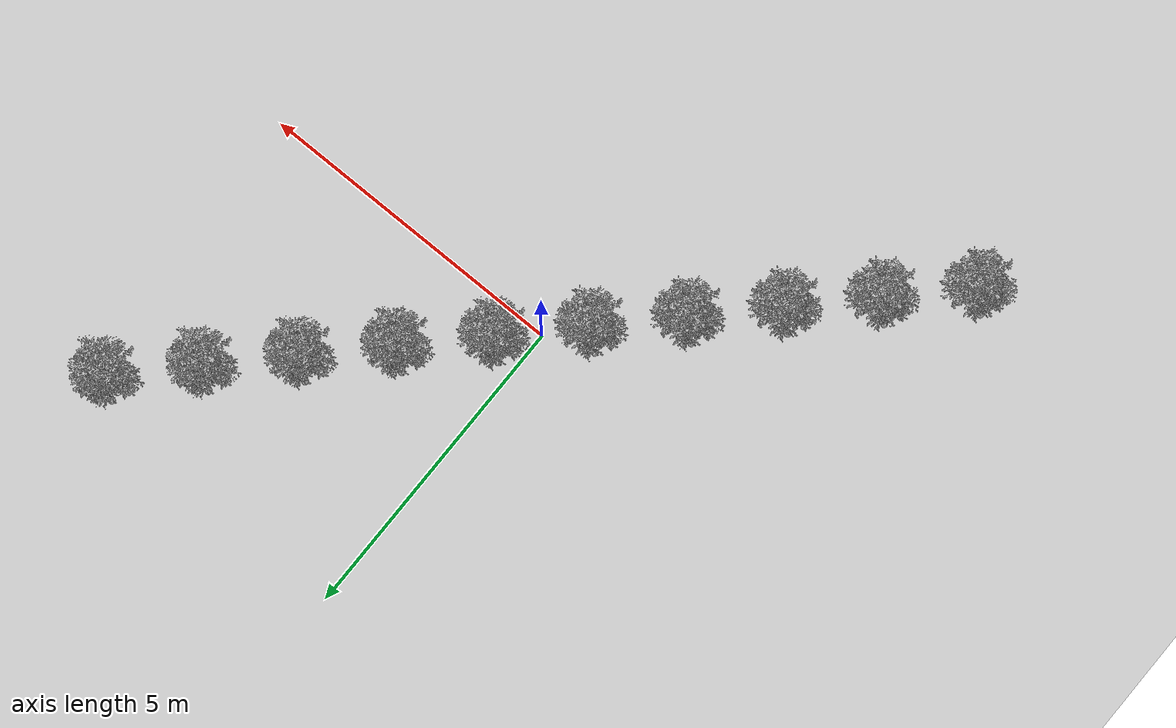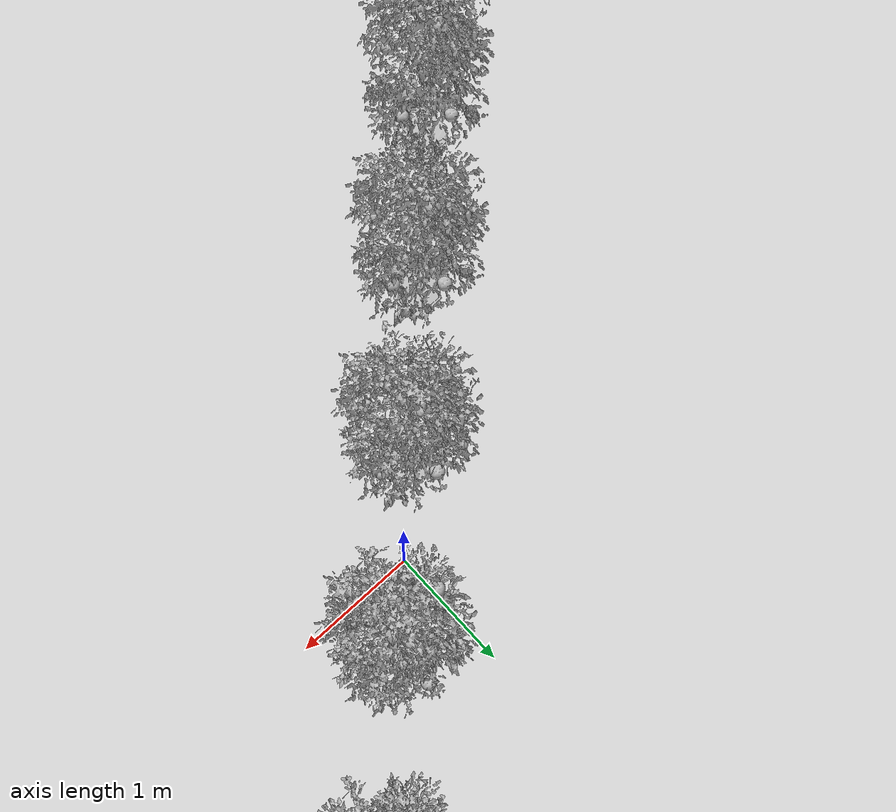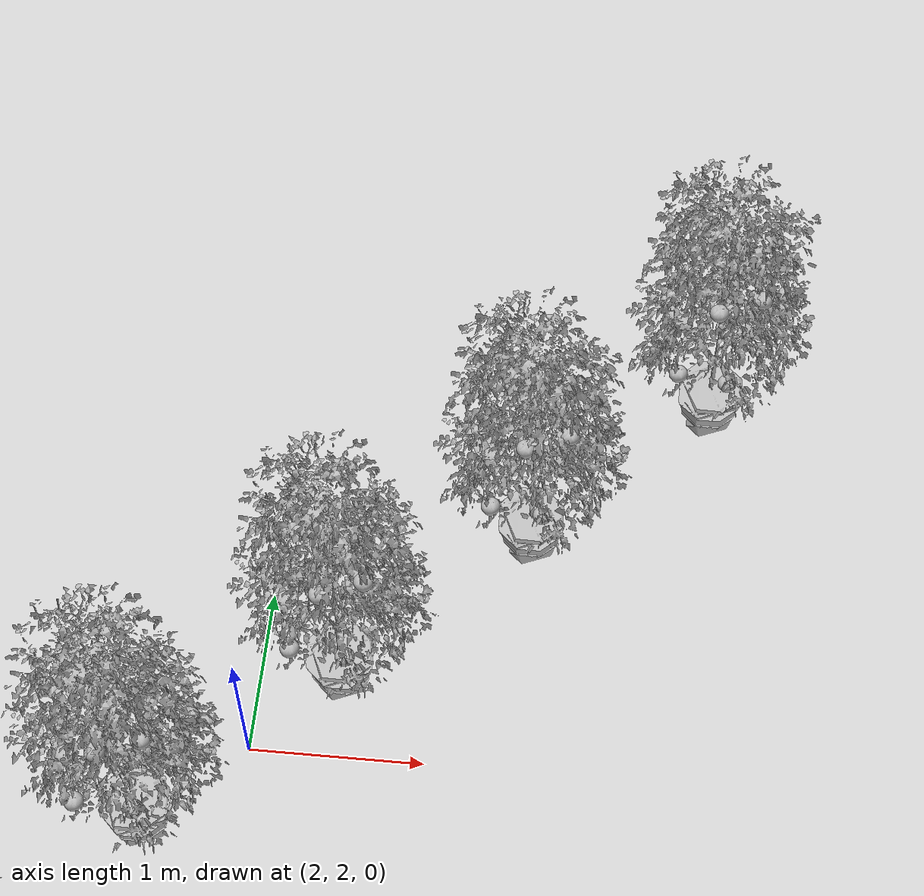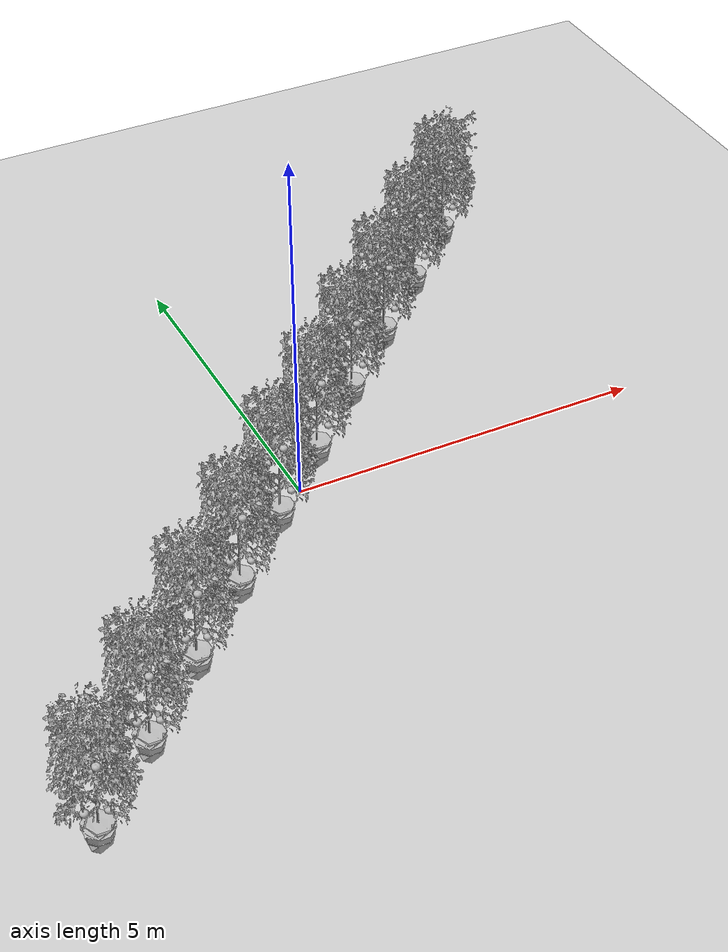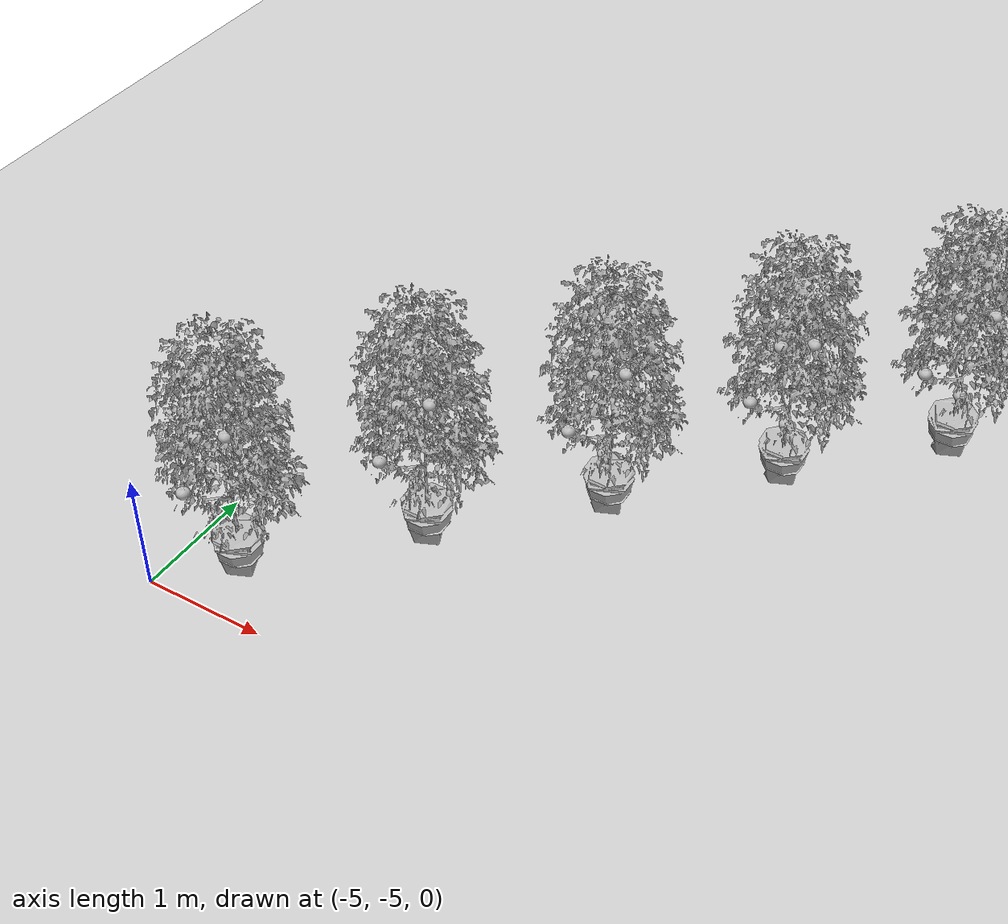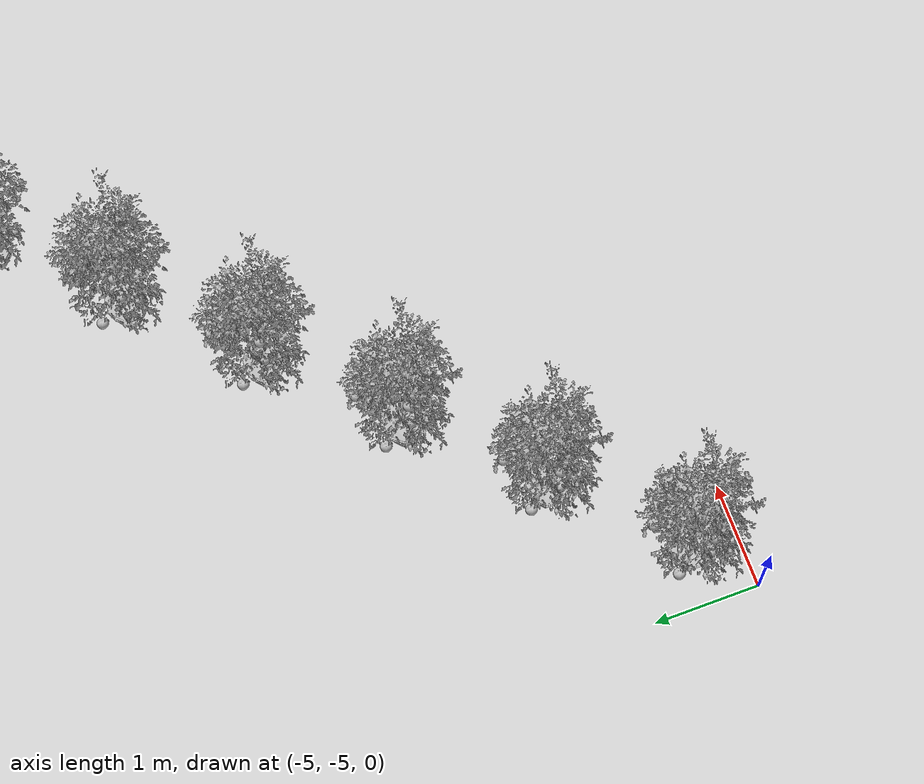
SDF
<sdf version="1.6">
 <world name="default">
  <physics type="ode">
   <max_step_size>0.004</max_step_size>
   <real_time_factor>1</real_time_factor>
   <real_time_update_rate>250</real_time_update_rate>
   <ode><solver><iters>50</iters><island_threads>4</island_threads></solver></ode>
  </physics>
  <scene><shadows>false</shadows><grid>false</grid><sky><clouds><speed>4</speed></clouds></sky></scene>
  <include><uri>model://sun</uri></include>
  <include><uri>model://ground_plane</uri></include>
  <include><uri>model://plant_4</uri><name>plant_1</name><pose>-0.5 -0.5 0 0 0 0</pose></include>
  <include><uri>model://plant_4</uri><name>plant_2</name><pose>-1.5 -1.5 0 0 0 0</pose></include>
  <include><uri>model://plant_4</uri><name>plant_3</name><pose>0.5 0.5 0 0 0 0</pose></include>
  <include><uri>model://plant_4</uri><name>plant_4</name><pose>1.5 1.5 0 0 0 0</pose></include>
  <include><uri>model://plant_4</uri><name>plant_5</name><pose>2.5 2.5 0 0 0 0</pose></include>
  <include><uri>model://plant_4</uri><name>plant_6</name><pose>-2.5 -2.5 0 0 0 0</pose></include>
  <include><uri>model://plant_4</uri><name>plant_7</name><pose>-3.5 -3.5 0 0 0 0</pose></include>
  <include><uri>model://plant_4</uri><name>plant_8</name><pose>3.5 3.5 0 0 0 0</pose></include>
  <include><uri>model://plant_4</uri><name>plant_9</name><pose>-4.5 -4.5 0 0 0 0</pose></include>
  <include><uri>model://plant_4</uri><name>plant_10</name><pose>4.5 4.5 0 0 0 0</pose></include>
 </world>
</sdf>

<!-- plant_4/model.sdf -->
<sdf version="1.6">
    <model name="plant_4">
    	<static>false</static>
       <link name="plant_link">
        <pose>0 0 0 0 0 0</pose>
        <inertial>
          <mass>30</mass>
        </inertial>
         <visual name="visual">
          <pose>0 0 0 0 0 -0.277507351</pose>
          <geometry>
            <mesh><uri>model://plant/meshes/plant.obj</uri></mesh>
          </geometry>
        </visual>
        <collision name="collision">
          <pose>0 0 0.125 0 0 0</pose>
          <geometry>
            <box><size>0.3 0.3 0.25</size></box>
          </geometry>
        </collision>
      </link>

      <link name="t_link_0">
        <pose>-0.297 0.244 0.669 0 0 0</pose>
        <inertial>
          <mass>0.1</mass>
        </inertial>
        <collision name="collision">
          <geometry>
            <sphere><radius>0.05</radius></sphere>
          </geometry>
        </collision>
        <visual name="visual">
          <geometry>
            <mesh><uri>model://tomato/meshes/tomato.obj</uri></mesh>
          </geometry>
        </visual>
      </link>
      <joint name="t_joint_0" type="fixed">
        <parent>plant_link</parent>
        <child>t_link_0</child>
        <axis>
          <xyz>0 0 1</xyz>
          <use_parent_model_frame>true</use_parent_model_frame>
        </axis>
        <sensor name="force_torque" type="force_torque">
          <always_on>true</always_on>
          <update_rate>250</update_rate>
          <plugin name="breakable_0" filename="libBreakableJointPlugin.so">
            <breaking_force_N>10</breaking_force_N>
          </plugin>
        </sensor>
      </joint>

      <link name="t_link_1">
        <pose>0.073 0.375 1.175 0 0 0</pose>
        <inertial>
          <mass>0.1</mass>
        </inertial>
        <collision name="collision">
          <geometry>
            <sphere><radius>0.05</radius></sphere>
          </geometry>
        </collision>
        <visual name="visual">
          <geometry>
            <mesh><uri>model://tomato/meshes/tomato.obj</uri></mesh>
          </geometry>
        </visual>
      </link>
      <joint name="t_joint_1" type="fixed">
        <parent>plant_link</parent>
        <child>t_link_1</child>
        <axis>
          <xyz>0 0 1</xyz>
          <use_parent_model_frame>true</use_parent_model_frame>
        </axis>
        <sensor name="force_torque" type="force_torque">
          <always_on>true</always_on>
          <update_rate>250</update_rate>
          <plugin name="breakable_1" filename="libBreakableJointPlugin.so">
            <breaking_force_N>10</breaking_force_N>
          </plugin>
        </sensor>
      </joint>

      <link name="t_link_2">
        <pose>0.196 -0.202 1.528 0 0 0</pose>
        <inertial>
          <mass>0.1</mass>
        </inertial>
        <collision name="collision">
          <geometry>
            <sphere><radius>0.05</radius></sphere>
          </geometry>
        </collision>
        <visual name="visual">
          <geometry>
            <mesh><uri>model://tomato/meshes/tomato.obj</uri></mesh>
          </geometry>
        </visual>
      </link>
      <joint name="t_joint_2" type="fixed">
        <parent>plant_link</parent>
        <child>t_link_2</child>
        <axis>
          <xyz>0 0 1</xyz>
          <use_parent_model_frame>true</use_parent_model_frame>
        </axis>
        <sensor name="force_torque" type="force_torque">
          <always_on>true</always_on>
          <update_rate>250</update_rate>
          <plugin name="breakable_2" filename="libBreakableJointPlugin.so">
            <breaking_force_N>10</breaking_force_N>
          </plugin>
        </sensor>
      </joint>

      <link name="t_link_3">
        <pose>0.054 -0.237 0.732 0 0 0</pose>
        <inertial>
          <mass>0.1</mass>
        </inertial>
        <collision name="collision">
          <geometry>
            <sphere><radius>0.05</radius></sphere>
          </geometry>
        </collision>
        <visual name="visual">
          <geometry>
            <mesh><uri>model://tomato/meshes/tomato.obj</uri></mesh>
          </geometry>
        </visual>
      </link>
      <joint name="t_joint_3" type="fixed">
        <parent>plant_link</parent>
        <child>t_link_3</child>
        <axis>
          <xyz>0 0 1</xyz>
          <use_parent_model_frame>true</use_parent_model_frame>
        </axis>
        <sensor name="force_torque" type="force_torque">
          <always_on>true</always_on>
          <update_rate>250</update_rate>
          <plugin name="breakable_3" filename="libBreakableJointPlugin.so">
            <breaking_force_N>10</breaking_force_N>
          </plugin>
        </sensor>
      </joint>

      <link name="t_link_4">
        <pose>-0.236 -0.275 0.851 0 0 0</pose>
        <inertial>
          <mass>0.1</mass>
        </inertial>
        <collision name="collision">
          <geometry>
            <sphere><radius>0.05</radius></sphere>
          </geometry>
        </collision>
        <visual name="visual">
          <geometry>
            <mesh><uri>model://tomato/meshes/tomato.obj</uri></mesh>
          </geometry>
        </visual>
      </link>
      <joint name="t_joint_4" type="fixed">
        <parent>plant_link</parent>
        <child>t_link_4</child>
        <axis>
          <xyz>0 0 1</xyz>
          <use_parent_model_frame>true</use_parent_model_frame>
        </axis>
        <sensor name="force_torque" type="force_torque">
          <always_on>true</always_on>
          <update_rate>250</update_rate>
          <plugin name="breakable_4" filename="libBreakableJointPlugin.so">
            <breaking_force_N>10</breaking_force_N>
          </plugin>
        </sensor>
      </joint>

      <link name="t_link_5">
        <pose>-0.318 0.010 1.158 0 0 0</pose>
        <inertial>
          <mass>0.1</mass>
        </inertial>
        <collision name="collision">
          <geometry>
            <sphere><radius>0.05</radius></sphere>
          </geometry>
        </collision>
        <visual name="visual">
          <geometry>
            <mesh><uri>model://tomato/meshes/tomato.obj</uri></mesh>
          </geometry>
        </visual>
      </link>
      <joint name="t_joint_5" type="fixed">
        <parent>plant_link</parent>
        <child>t_link_5</child>
        <axis>
          <xyz>0 0 1</xyz>
          <use_parent_model_frame>true</use_parent_model_frame>
        </axis>
        <sensor name="force_torque" type="force_torque">
          <always_on>true</always_on>
          <update_rate>250</update_rate>
          <plugin name="breakable_5" filename="libBreakableJointPlugin.so">
            <breaking_force_N>10</breaking_force_N>
          </plugin>
        </sensor>
      </joint>

      <link name="t_link_6">
        <pose>0.351 0.120 1.158 0 0 0</pose>
        <inertial>
          <mass>0.1</mass>
        </inertial>
        <collision name="collision">
          <geometry>
            <sphere><radius>0.05</radius></sphere>
          </geometry>
        </collision>
        <visual name="visual">
          <geometry>
            <mesh><uri>model://tomato/meshes/tomato.obj</uri></mesh>
          </geometry>
        </visual>
      </link>
      <joint name="t_joint_6" type="fixed">
        <parent>plant_link</parent>
        <child>t_link_6</child>
        <axis>
          <xyz>0 0 1</xyz>
          <use_parent_model_frame>true</use_parent_model_frame>
        </axis>
        <sensor name="force_torque" type="force_torque">
          <always_on>true</always_on>
          <update_rate>250</update_rate>
          <plugin name="breakable_6" filename="libBreakableJointPlugin.so">
            <breaking_force_N>10</breaking_force_N>
          </plugin>
        </sensor>
      </joint>

      <link name="t_link_7">
        <pose>-0.039 -0.257 1.451 0 0 0</pose>
        <inertial>
          <mass>0.1</mass>
        </inertial>
        <collision name="collision">
          <geometry>
            <sphere><radius>0.05</radius></sphere>
          </geometry>
        </collision>
        <visual name="visual">
          <geometry>
            <mesh><uri>model://tomato/meshes/tomato.obj</uri></mesh>
          </geometry>
        </visual>
      </link>
      <joint name="t_joint_7" type="fixed">
        <parent>plant_link</parent>
        <child>t_link_7</child>
        <axis>
          <xyz>0 0 1</xyz>
          <use_parent_model_frame>true</use_parent_model_frame>
        </axis>
        <sensor name="force_torque" type="force_torque">
          <always_on>true</always_on>
          <update_rate>250</update_rate>
          <plugin name="breakable_7" filename="libBreakableJointPlugin.so">
            <breaking_force_N>10</breaking_force_N>
          </plugin>
        </sensor>
      </joint>

      <link name="t_link_8">
        <pose>-0.236 -0.189 1.233 0 0 0</pose>
        <inertial>
          <mass>0.1</mass>
        </inertial>
        <collision name="collision">
          <geometry>
            <sphere><radius>0.05</radius></sphere>
          </geometry>
        </collision>
        <visual name="visual">
          <geometry>
            <mesh><uri>model://tomato/meshes/tomato.obj</uri></mesh>
          </geometry>
        </visual>
      </link>
      <joint name="t_joint_8" type="fixed">
        <parent>plant_link</parent>
        <child>t_link_8</child>
        <axis>
          <xyz>0 0 1</xyz>
          <use_parent_model_frame>true</use_parent_model_frame>
        </axis>
        <sensor name="force_torque" type="force_torque">
          <always_on>true</always_on>
          <update_rate>250</update_rate>
          <plugin name="breakable_8" filename="libBreakableJointPlugin.so">
            <breaking_force_N>10</breaking_force_N>
          </plugin>
        </sensor>
      </joint>

      <link name="t_link_9">
        <pose>-0.318 0.010 1.599 0 0 0</pose>
        <inertial>
          <mass>0.1</mass>
        </inertial>
        <collision name="collision">
          <geometry>
            <sphere><radius>0.05</radius></sphere>
          </geometry>
        </collision>
        <visual name="visual">
          <geometry>
            <mesh><uri>model://tomato/meshes/tomato.obj</uri></mesh>
          </geometry>
        </visual>
      </link>
      <joint name="t_joint_9" type="fixed">
        <parent>plant_link</parent>
        <child>t_link_9</child>
        <axis>
          <xyz>0 0 1</xyz>
          <use_parent_model_frame>true</use_parent_model_frame>
        </axis>
        <sensor name="force_torque" type="force_torque">
          <always_on>true</always_on>
          <update_rate>250</update_rate>
          <plugin name="breakable_9" filename="libBreakableJointPlugin.so">
            <breaking_force_N>10</breaking_force_N>
          </plugin>
        </sensor>
      </joint>
  </model>
</sdf>
